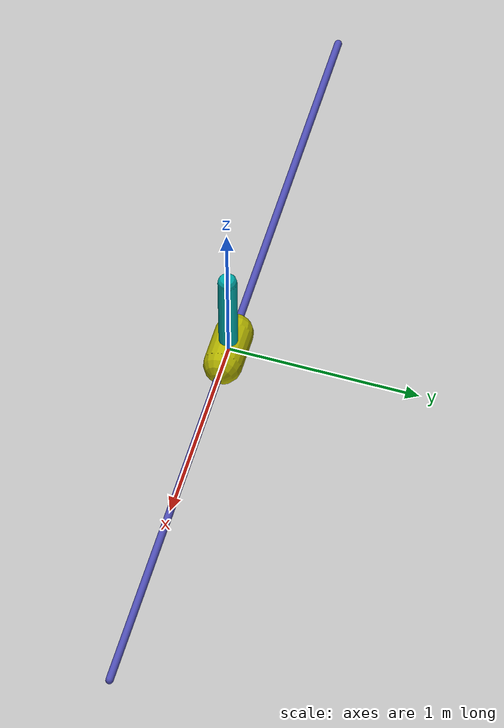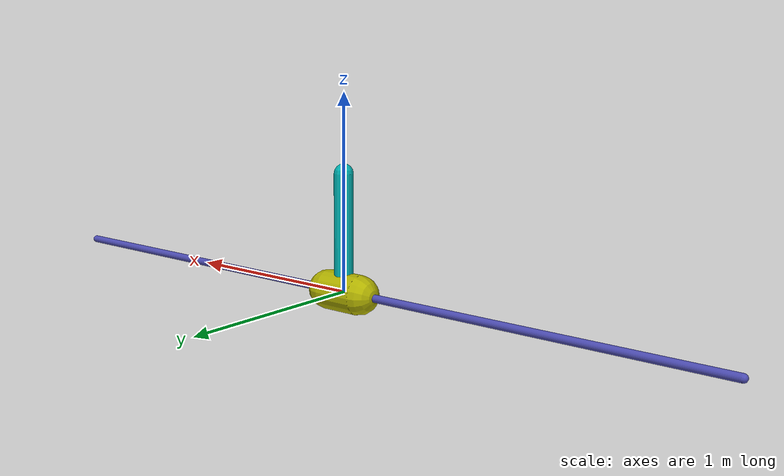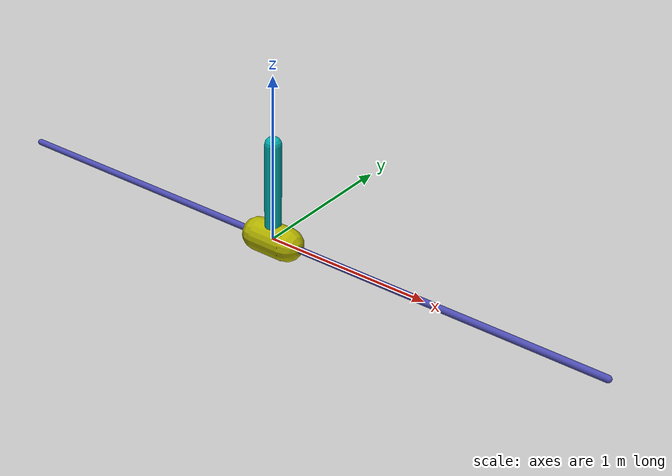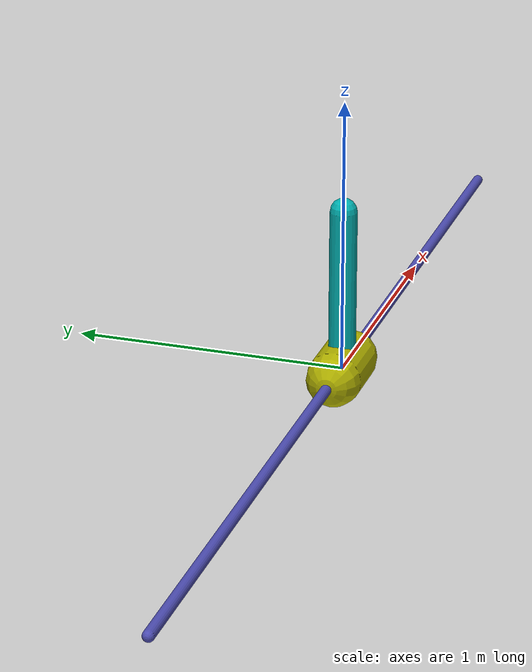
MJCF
<mujoco model="inverted pendulum">
    <compiler inertiafromgeom="true"/>
    <default>
        <joint armature="0" damping="0" limited="true"/>
        <geom contype="0" friction="1 0.1 0.1" rgba="0.7 0.7 0 1"/>
        <tendon/>
    </default>
    <option gravity="0 0 -9.81" integrator="Euler" timestep="0.02"/>
    <size nstack="3000"/>
    <worldbody>
        <!--geom name="ground" type="plane" pos="0 0 0" /-->
        <geom name="rail" pos="0 0 0" quat="0.707 0 0.707 0" rgba="0.3 0.3 0.7 1" size="0.02 2" type="capsule"/>
        <body name="cart" pos="0 0 0">
            <joint axis="1 0 0" limited="true" name="slider" pos="0 0 0" range="-2 2" type="slide"/>
            <geom name="cart" pos="0 0 0" quat="0.707 0 0.707 0" size="0.1 0.1" type="capsule"/>
            <body name="pole" pos="0 0 0" quat="1 0 0 0">
                <joint axis="0 1 0" name="hinge" pos="0 0 0" range="-90 90" type="hinge"/>
                <geom fromto="0 0 0 0.001 0 0.6" name="cpole" rgba="0 0.7 0.7 1" size="0.049 0.3" type="capsule"/>
            </body>
        </body>
    </worldbody>
    <actuator>
        <motor ctrllimited="true" ctrlrange="-3 3" gear="100" joint="slider" name="slide"/>
    </actuator>
</mujoco>
